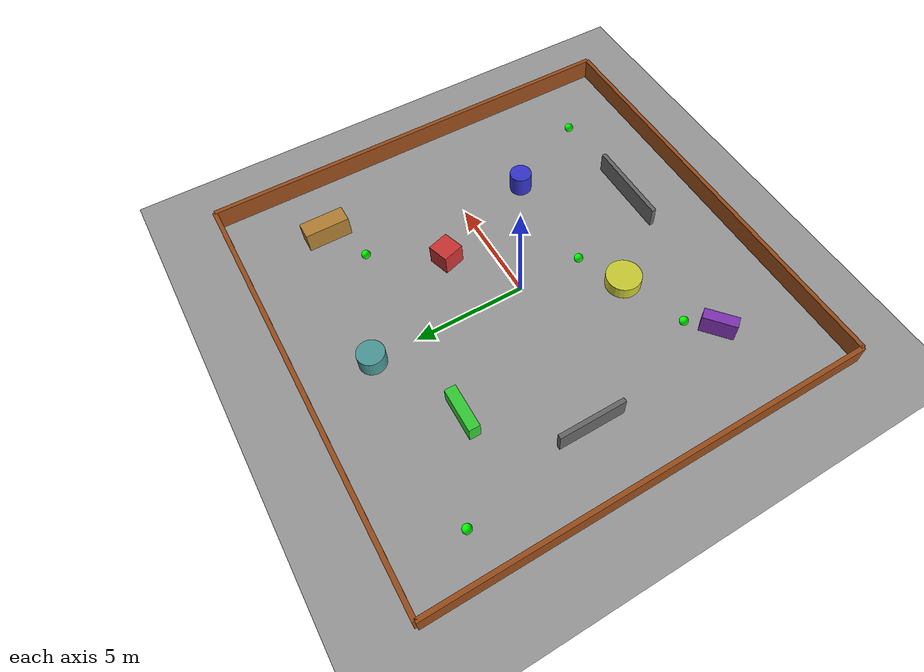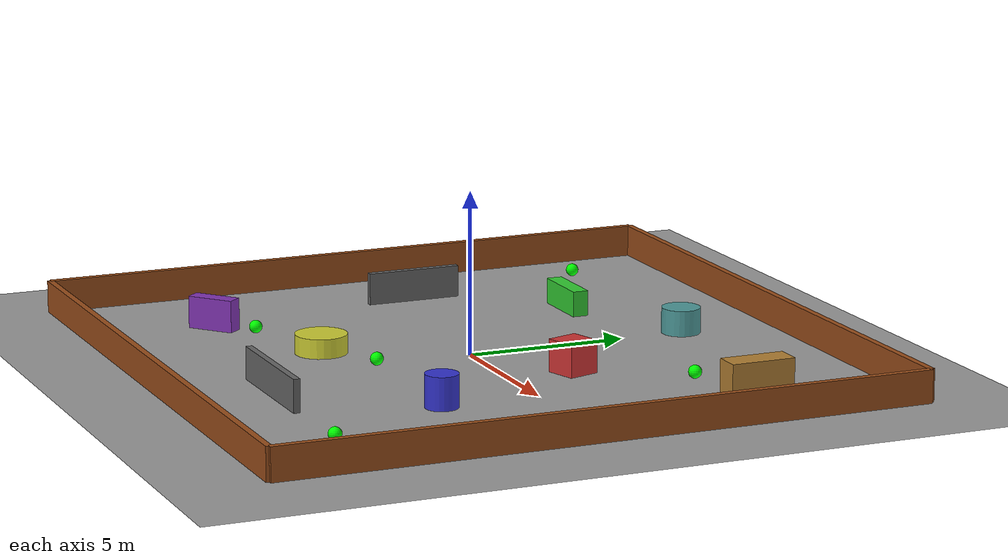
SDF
<?xml version="1.0" ?>
<sdf version="1.8">
  <world name="flywheel_arena">

    <physics name="1ms" type="ode">
      <max_step_size>0.001</max_step_size>
      <real_time_factor>2.0</real_time_factor>
      <real_time_update_rate>1000</real_time_update_rate>
    </physics>

    <plugin filename="gz-sim-physics-system" name="gz::sim::systems::Physics"/>
    <plugin filename="gz-sim-user-commands-system" name="gz::sim::systems::UserCommands"/>
    <plugin filename="gz-sim-scene-broadcaster-system" name="gz::sim::systems::SceneBroadcaster"/>
    <plugin filename="gz-sim-sensors-system" name="gz::sim::systems::Sensors">
      <render_engine>ogre2</render_engine>
    </plugin>
    <plugin filename="gz-sim-contact-system" name="gz::sim::systems::Contact"/>
    <plugin filename="gz-sim-imu-system" name="gz::sim::systems::Imu"/>

    <!-- Lighting -->
    <light type="directional" name="sun">
      <cast_shadows>true</cast_shadows>
      <pose>0 0 10 0 0 0</pose>
      <diffuse>0.8 0.8 0.8 1</diffuse>
      <specular>0.2 0.2 0.2 1</specular>
      <direction>-0.5 0.1 -0.9</direction>
    </light>

    <!-- Ground plane -->
    <model name="ground_plane">
      <static>true</static>
      <link name="link">
        <collision name="collision">
          <geometry><plane><normal>0 0 1</normal><size>100 100</size></plane></geometry>
          <surface>
            <friction><ode><mu>1.0</mu><mu2>1.0</mu2></ode></friction>
          </surface>
        </collision>
        <visual name="visual">
          <geometry><plane><normal>0 0 1</normal><size>100 100</size></plane></geometry>
          <material>
            <ambient>0.5 0.5 0.5 1</ambient>
            <diffuse>0.6 0.6 0.6 1</diffuse>
          </material>
        </visual>
      </link>
    </model>

    <!-- Arena walls (20m x 20m) -->
    <model name="wall_north">
      <static>true</static>
      <pose>0 10 0.5 0 0 0</pose>
      <link name="link">
        <collision name="collision"><geometry><box><size>20 0.2 1.0</size></box></geometry></collision>
        <visual name="visual"><geometry><box><size>20 0.2 1.0</size></box></geometry>
          <material><ambient>0.6 0.3 0.1 1</ambient></material>
        </visual>
      </link>
    </model>

    <model name="wall_south">
      <static>true</static>
      <pose>0 -10 0.5 0 0 0</pose>
      <link name="link">
        <collision name="collision"><geometry><box><size>20 0.2 1.0</size></box></geometry></collision>
        <visual name="visual"><geometry><box><size>20 0.2 1.0</size></box></geometry>
          <material><ambient>0.6 0.3 0.1 1</ambient></material>
        </visual>
      </link>
    </model>

    <model name="wall_east">
      <static>true</static>
      <pose>10 0 0.5 0 0 1.5708</pose>
      <link name="link">
        <collision name="collision"><geometry><box><size>20 0.2 1.0</size></box></geometry></collision>
        <visual name="visual"><geometry><box><size>20 0.2 1.0</size></box></geometry>
          <material><ambient>0.6 0.3 0.1 1</ambient></material>
        </visual>
      </link>
    </model>

    <model name="wall_west">
      <static>true</static>
      <pose>-10 0 0.5 0 0 1.5708</pose>
      <link name="link">
        <collision name="collision"><geometry><box><size>20 0.2 1.0</size></box></geometry></collision>
        <visual name="visual"><geometry><box><size>20 0.2 1.0</size></box></geometry>
          <material><ambient>0.6 0.3 0.1 1</ambient></material>
        </visual>
      </link>
    </model>

    <!-- Obstacles -->
    <model name="box_1">
      <static>true</static>
      <pose>3 2 0.5 0 0 0.3</pose>
      <link name="link">
        <collision name="collision"><geometry><box><size>1.0 1.0 1.0</size></box></geometry></collision>
        <visual name="visual"><geometry><box><size>1.0 1.0 1.0</size></box></geometry>
          <material><ambient>0.8 0.2 0.2 1</ambient></material>
        </visual>
      </link>
    </model>

    <model name="box_2">
      <static>true</static>
      <pose>-4 5 0.4 0 0 0</pose>
      <link name="link">
        <collision name="collision"><geometry><box><size>2.0 0.5 0.8</size></box></geometry></collision>
        <visual name="visual"><geometry><box><size>2.0 0.5 0.8</size></box></geometry>
          <material><ambient>0.2 0.8 0.2 1</ambient></material>
        </visual>
      </link>
    </model>

    <model name="cylinder_1">
      <static>true</static>
      <pose>5 -3 0.5 0 0 0</pose>
      <link name="link">
        <collision name="collision"><geometry><cylinder><radius>0.5</radius><length>1.0</length></cylinder></geometry></collision>
        <visual name="visual"><geometry><cylinder><radius>0.5</radius><length>1.0</length></cylinder></geometry>
          <material><ambient>0.2 0.2 0.8 1</ambient></material>
        </visual>
      </link>
    </model>

    <model name="cylinder_2">
      <static>true</static>
      <pose>-2 -4 0.3 0 0 0</pose>
      <link name="link">
        <collision name="collision"><geometry><cylinder><radius>0.8</radius><length>0.6</length></cylinder></geometry></collision>
        <visual name="visual"><geometry><cylinder><radius>0.8</radius><length>0.6</length></cylinder></geometry>
          <material><ambient>0.8 0.8 0.2 1</ambient></material>
        </visual>
      </link>
    </model>

    <model name="box_3">
      <static>true</static>
      <pose>-6 -6 0.5 0 0 0.7</pose>
      <link name="link">
        <collision name="collision"><geometry><box><size>1.5 0.5 1.0</size></box></geometry></collision>
        <visual name="visual"><geometry><box><size>1.5 0.5 1.0</size></box></geometry>
          <material><ambient>0.5 0.2 0.7 1</ambient></material>
        </visual>
      </link>
    </model>

    <model name="box_4">
      <static>true</static>
      <pose>7 6 0.5 0 0 0</pose>
      <link name="link">
        <collision name="collision"><geometry><box><size>0.8 2.0 1.0</size></box></geometry></collision>
        <visual name="visual"><geometry><box><size>0.8 2.0 1.0</size></box></geometry>
          <material><ambient>0.7 0.5 0.2 1</ambient></material>
        </visual>
      </link>
    </model>

    <model name="cylinder_3">
      <static>true</static>
      <pose>0 7 0.4 0 0 0</pose>
      <link name="link">
        <collision name="collision"><geometry><cylinder><radius>0.6</radius><length>0.8</length></cylinder></geometry></collision>
        <visual name="visual"><geometry><cylinder><radius>0.6</radius><length>0.8</length></cylinder></geometry>
          <material><ambient>0.3 0.6 0.6 1</ambient></material>
        </visual>
      </link>
    </model>

    <model name="wall_internal_1">
      <static>true</static>
      <pose>2 -7 0.5 0 0 0</pose>
      <link name="link">
        <collision name="collision"><geometry><box><size>4.0 0.2 1.0</size></box></geometry></collision>
        <visual name="visual"><geometry><box><size>4.0 0.2 1.0</size></box></geometry>
          <material><ambient>0.4 0.4 0.4 1</ambient></material>
        </visual>
      </link>
    </model>

    <model name="wall_internal_2">
      <static>true</static>
      <pose>-7 1 0.5 0 0 1.5708</pose>
      <link name="link">
        <collision name="collision"><geometry><box><size>3.0 0.2 1.0</size></box></geometry></collision>
        <visual name="visual"><geometry><box><size>3.0 0.2 1.0</size></box></geometry>
          <material><ambient>0.4 0.4 0.4 1</ambient></material>
        </visual>
      </link>
    </model>

    <!-- Goal markers (colored spheres) -->
    <model name="goal_0">
      <static>true</static>
      <pose>5 5 0.2 0 0 0</pose>
      <link name="link">
        <visual name="visual"><geometry><sphere><radius>0.2</radius></sphere></geometry>
          <material><ambient>0 1 0 1</ambient><diffuse>0 1 0 1</diffuse></material>
        </visual>
      </link>
    </model>

    <model name="goal_1">
      <static>true</static>
      <pose>-5 -5 0.2 0 0 0</pose>
      <link name="link">
        <visual name="visual"><geometry><sphere><radius>0.2</radius></sphere></geometry>
          <material><ambient>0 1 0 1</ambient><diffuse>0 1 0 1</diffuse></material>
        </visual>
      </link>
    </model>

    <model name="goal_2">
      <static>true</static>
      <pose>7 -7 0.2 0 0 0</pose>
      <link name="link">
        <visual name="visual"><geometry><sphere><radius>0.2</radius></sphere></geometry>
          <material><ambient>0 1 0 1</ambient><diffuse>0 1 0 1</diffuse></material>
        </visual>
      </link>
    </model>

    <model name="goal_3">
      <static>true</static>
      <pose>-8 7 0.2 0 0 0</pose>
      <link name="link">
        <visual name="visual"><geometry><sphere><radius>0.2</radius></sphere></geometry>
          <material><ambient>0 1 0 1</ambient><diffuse>0 1 0 1</diffuse></material>
        </visual>
      </link>
    </model>

    <model name="goal_4">
      <static>true</static>
      <pose>0 -3 0.2 0 0 0</pose>
      <link name="link">
        <visual name="visual"><geometry><sphere><radius>0.2</radius></sphere></geometry>
          <material><ambient>0 1 0 1</ambient><diffuse>0 1 0 1</diffuse></material>
        </visual>
      </link>
    </model>

  </world>
</sdf>
